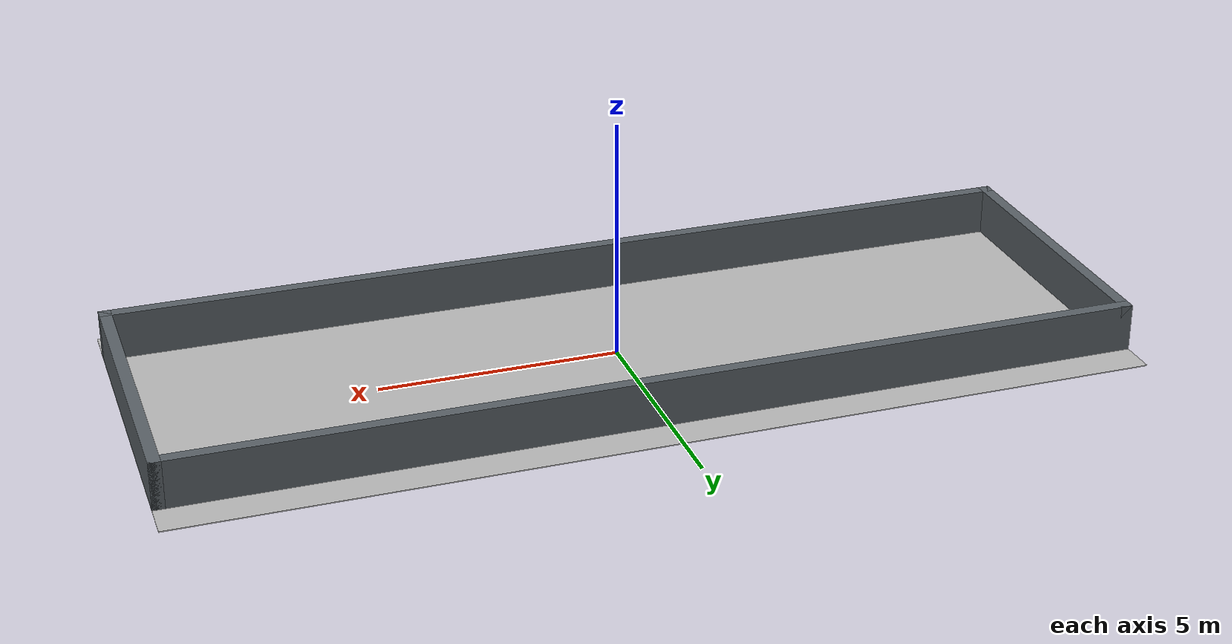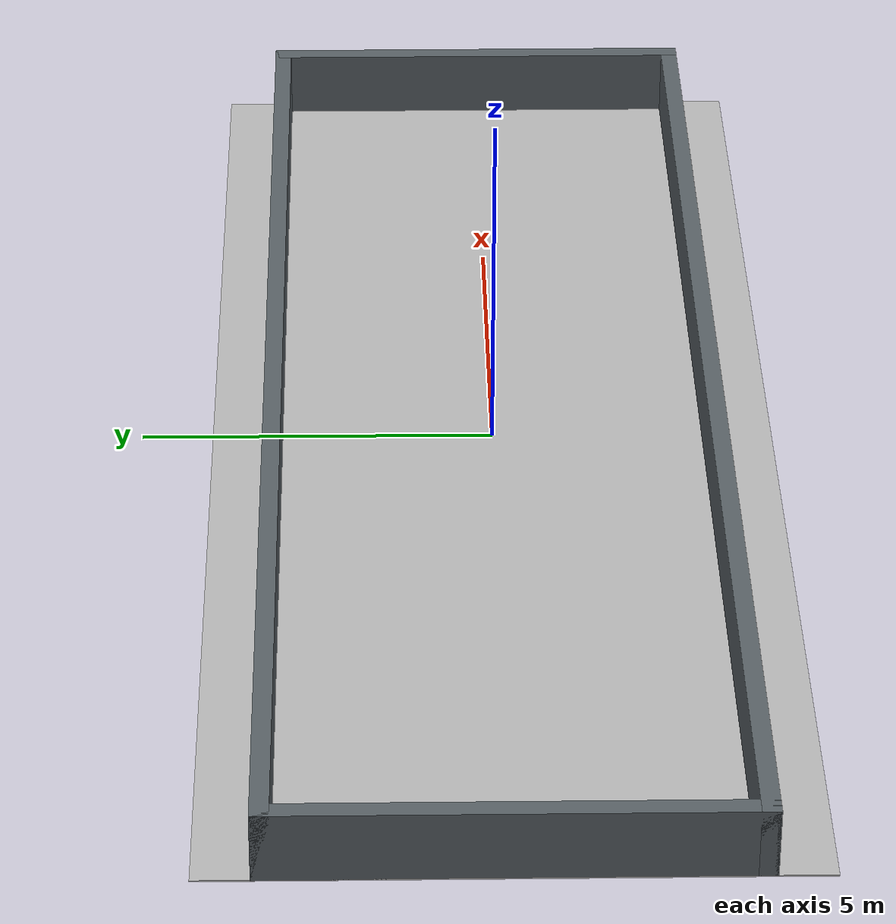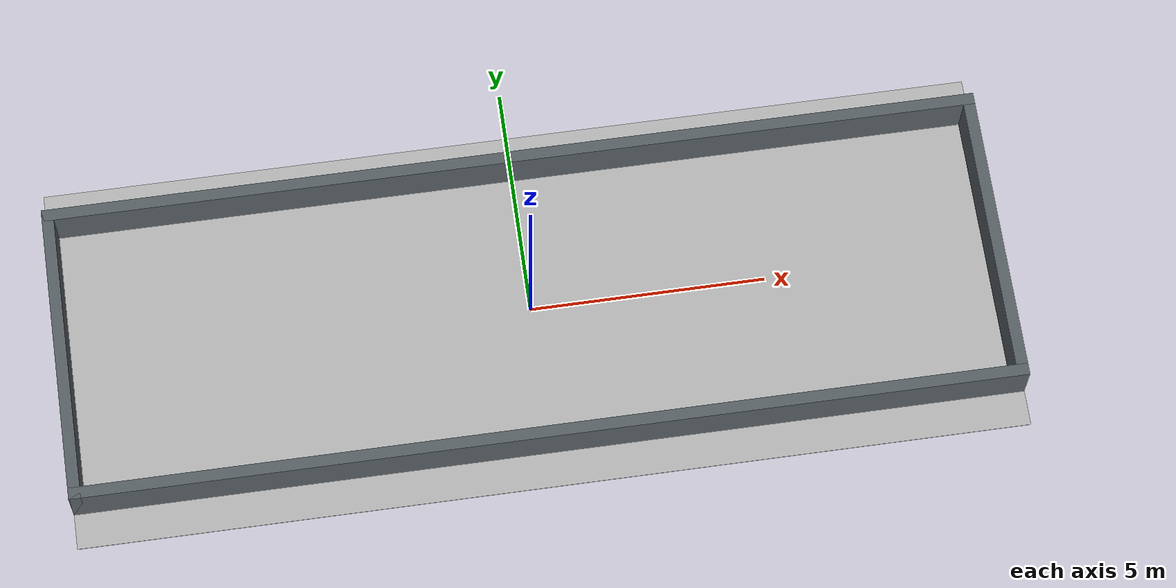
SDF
<?xml version="1.0"?>
<sdf version="1.6">
  <world name="default">
    <gravity>0 0 -9.8</gravity>
    <physics name="default_physics" type="ode">
      <max_step_size>0.002</max_step_size>
      <real_time_factor>1</real_time_factor>
      <real_time_update_rate>500</real_time_update_rate>
    </physics>
    <include><uri>model://sun</uri></include>
    <model name="ground_plane">
      <static>true</static>
      <link name="link">
        <collision name="collision">
          <geometry><box><size>20.000 8.000 0.02</size></box></geometry>
        </collision>
        <visual name="visual">
          <geometry><box><size>20.000 8.000 0.02</size></box></geometry>
          <material>
            <ambient>0.72 0.72 0.72 1</ambient>
            <diffuse>0.72 0.72 0.72 1</diffuse>
          </material>
        </visual>
      </link>
    </model>

    <model name="oncoming_wall_north">
      <static>true</static>
      <pose>0.000 3.125 0.500 0 0 0</pose>
      <link name="link">
        <collision name="collision">
          <geometry><box><size>20.000 0.250 1.000</size></box></geometry>
        </collision>
        <visual name="visual">
          <geometry><box><size>20.000 0.250 1.000</size></box></geometry>
          <material>
            <ambient>0.35 0.38 0.40 1</ambient>
            <diffuse>0.35 0.38 0.40 1</diffuse>
          </material>
        </visual>
      </link>
    </model>

    <model name="oncoming_wall_south">
      <static>true</static>
      <pose>0.000 -3.125 0.500 0 0 0</pose>
      <link name="link">
        <collision name="collision">
          <geometry><box><size>20.000 0.250 1.000</size></box></geometry>
        </collision>
        <visual name="visual">
          <geometry><box><size>20.000 0.250 1.000</size></box></geometry>
          <material>
            <ambient>0.35 0.38 0.40 1</ambient>
            <diffuse>0.35 0.38 0.40 1</diffuse>
          </material>
        </visual>
      </link>
    </model>

    <model name="oncoming_end_west">
      <static>true</static>
      <pose>-9.875 0.000 0.500 0 0 0</pose>
      <link name="link">
        <collision name="collision">
          <geometry><box><size>0.250 6.500 1.000</size></box></geometry>
        </collision>
        <visual name="visual">
          <geometry><box><size>0.250 6.500 1.000</size></box></geometry>
          <material>
            <ambient>0.35 0.38 0.40 1</ambient>
            <diffuse>0.35 0.38 0.40 1</diffuse>
          </material>
        </visual>
      </link>
    </model>

    <model name="oncoming_end_east">
      <static>true</static>
      <pose>9.875 0.000 0.500 0 0 0</pose>
      <link name="link">
        <collision name="collision">
          <geometry><box><size>0.250 6.500 1.000</size></box></geometry>
        </collision>
        <visual name="visual">
          <geometry><box><size>0.250 6.500 1.000</size></box></geometry>
          <material>
            <ambient>0.35 0.38 0.40 1</ambient>
            <diffuse>0.35 0.38 0.40 1</diffuse>
          </material>
        </visual>
      </link>
    </model>
  </world>
</sdf>
